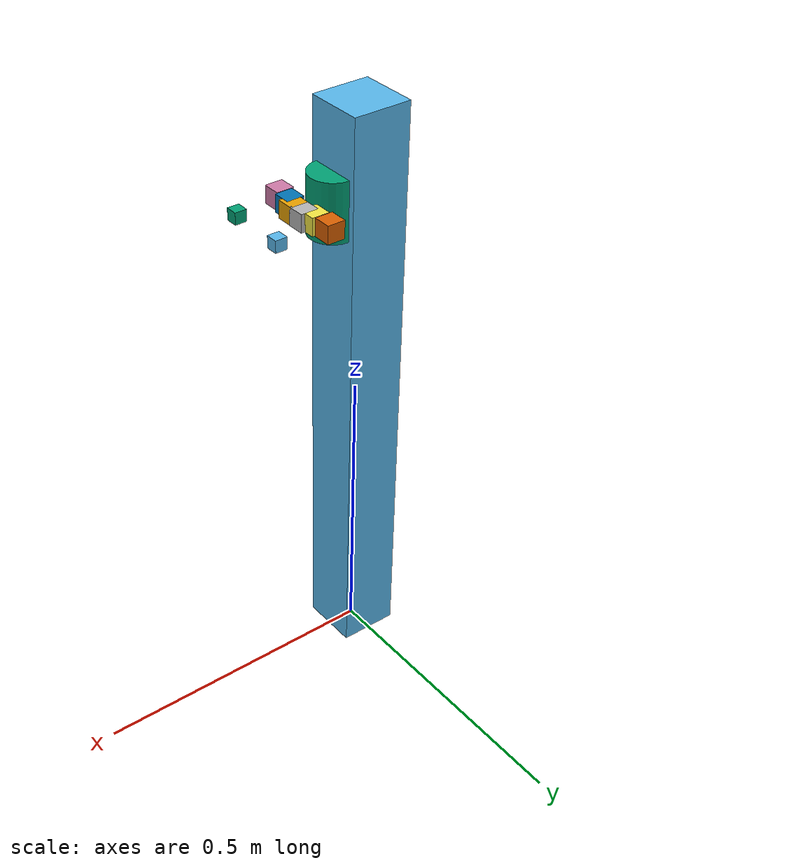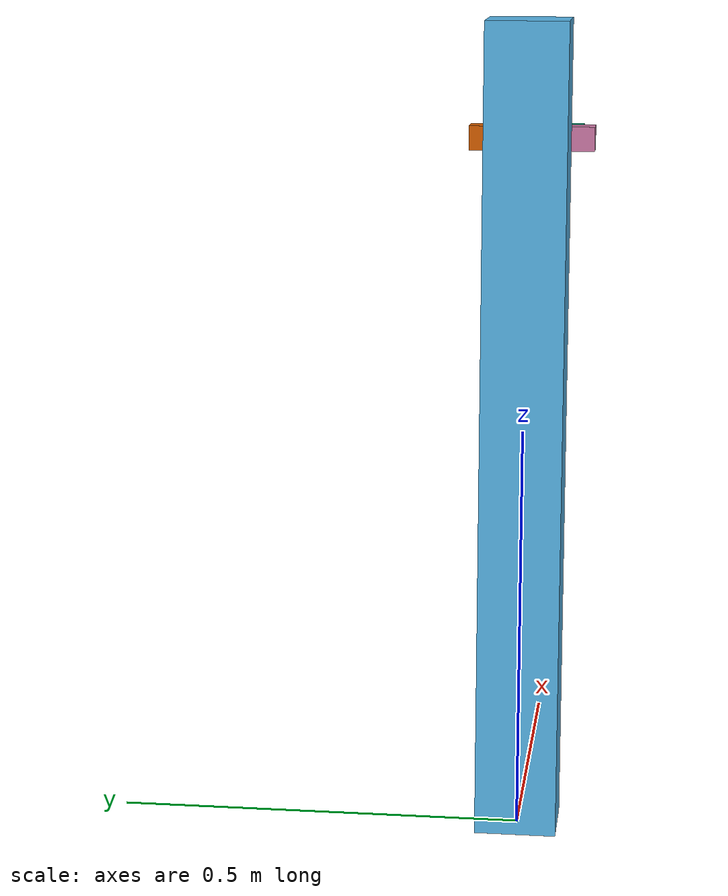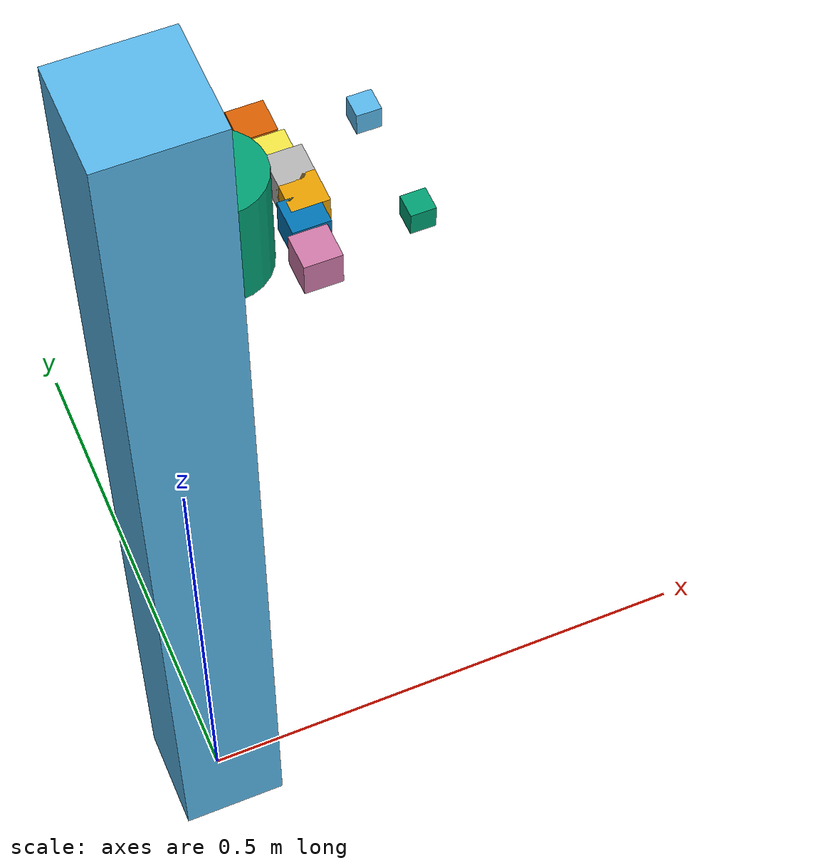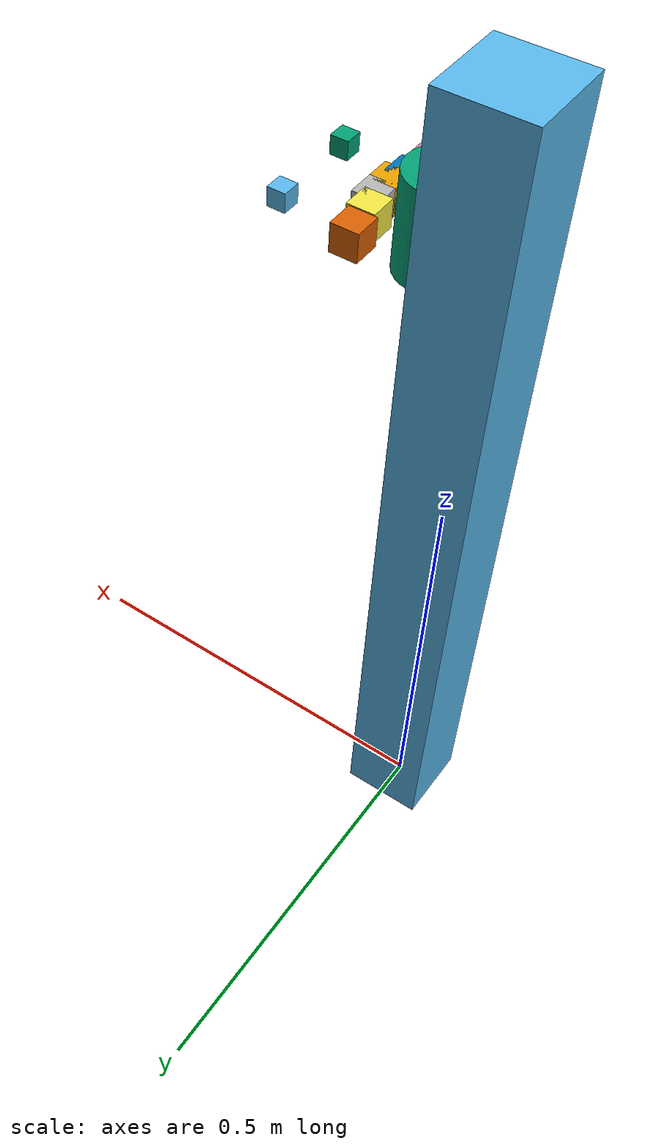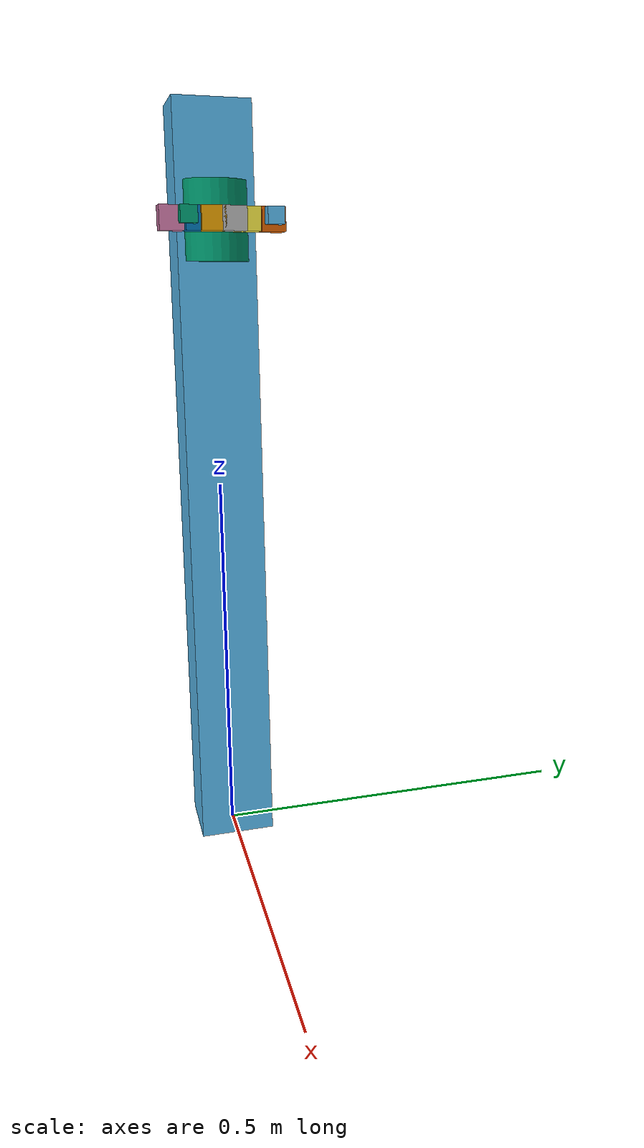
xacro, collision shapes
<?xml version="1.0" ?>

<robot name="robotiq_85_gripper"
  xmlns:xacro="http://www.ros.org/wiki/xacro">
  <xacro:include filename="$(find robotiq_description)/urdf/robotiq_85_gripper.urdf.xacro" />

  <gazebo>
    <plugin name="gz_ros2_control" filename="gz_ros2_control::GazeboSimROS2ControlPlugin">
      <robotNamespace>/</robotNamespace>
    </plugin>
  </gazebo>

  <link name="world"/>
  <joint name="world_fixed" type="fixed">
    <origin xyz="0 0 0" rpy="0 0 0"/>
    <parent link="world"/>
    <child link="gripper_root_link"/>
  </joint>

  <link name="gripper_root_link">
    <visual>
      <origin xyz="0 0 0.5" rpy="0 0 0"/>
      <geometry>
        <box size="0.1 0.1 1.0"/>
      </geometry>
    </visual>
    <collision>
      <origin xyz="0 0 0.5" rpy="0 0 0"/>
      <geometry>
        <box size="0.1 0.1 1.0"/>
      </geometry>
    </collision>
    <inertial>
      <mass value="1e2" />
      <origin xyz="0.0 0.0 0.0" />
      <inertia ixx = "0.000001" ixy = "0.000000" ixz = "0.000000"
           iyx = "0.000000" iyy = "0.000001" iyz = "0.000000"
           izx = "0.000000" izy = "0.000000" izz = "0.000001" />
    </inertial>
  </link>

  <xacro:robotiq_85_gripper prefix="" parent="gripper_root_link">
    <origin xyz="0.05 0 0.85" rpy="0 0 0"/>
  </xacro:robotiq_85_gripper>

</robot>

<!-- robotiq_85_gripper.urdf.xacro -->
<robot name="robotiq_85_gripper" xmlns:xacro="http://www.ros.org/wiki/xacro">

  <xacro:include filename="$(find robotiq_description)/urdf/robotiq_85_gripper.transmission.xacro" />

  <xacro:macro name="robotiq_85_gripper" params="prefix parent *origin">

    <joint name="${prefix}robotiq_85_base_joint" type="fixed">
      <parent link="${parent}"/>
      <child link="${prefix}robotiq_85_base_link"/>
      <xacro:insert_block name="origin"/>
    </joint>

    <link name="${prefix}robotiq_85_base_link">
      <visual>
        <geometry>
          <mesh filename="package://robotiq_description/meshes/visual/robotiq_85_base_link.dae"/>
        </geometry>
      </visual>
      <collision>
        <geometry>
          <cylinder radius="0.04" length="0.1"/>
        </geometry>
      </collision>
      <inertial>
        <mass value="0.636951" />
        <origin xyz="0.0 0.0 0.0" />
        <inertia ixx = "0.000380" ixy = "0.000000" ixz = "0.000000"
             iyx = "0.000000" iyy = "0.001110" iyz = "0.000000"
             izx = "0.000000" izy = "0.000000" izz = "0.001171" />
      </inertial>
    </link>

    <joint name="${prefix}robotiq_85_left_knuckle_joint" type="revolute">
      <parent link="${prefix}robotiq_85_base_link"/>
      <child link="${prefix}robotiq_85_left_knuckle_link"/>
      <axis xyz="0 0 1"/>
      <origin rpy="${pi} 0.0 0.0" xyz="0.05490451627 0.03060114443 0.0"/>
      <limit lower="0.0" upper="0.80285" velocity="0.5" effort="1000"/>
    </joint>

    <joint name="${prefix}robotiq_85_right_knuckle_joint" type="continuous">
      <parent link="${prefix}robotiq_85_base_link"/>
      <child link="${prefix}robotiq_85_right_knuckle_link"/>
      <axis xyz="0 0 1"/>
      <origin rpy="0.0 0.0 0.0" xyz="0.05490451627 -0.03060114443 0.0"/>
      <limit lower="-3.14" upper="3.14" velocity="100.0" effort="1000"/>
      <mimic joint="${prefix}robotiq_85_left_knuckle_joint" multiplier="1.0"/>
    </joint>

    <link name="${prefix}robotiq_85_left_knuckle_link">
      <visual>
        <geometry>
          <mesh filename="package://robotiq_description/meshes/visual/robotiq_85_knuckle_link.dae"/>
        </geometry>
      </visual>
      <collision>
        <geometry>
          <box size="0.03 0.03 0.03"/>
        </geometry>
      </collision>
      <inertial>
        <mass value="0.018491" />
        <origin xyz="0.0 0.0 0.0" />
        <inertia ixx = "0.000009" ixy = "-0.000001" ixz = "0.000000"
             iyx = "-0.000001" iyy = "0.000001" iyz = "0.000000"
             izx = "0.000000" izy = "0.000000" izz = "0.000010" />
      </inertial>
    </link>

    <link name="${prefix}robotiq_85_right_knuckle_link">
      <visual>
        <geometry>
          <mesh filename="package://robotiq_description/meshes/visual/robotiq_85_knuckle_link.dae"/>
        </geometry>
      </visual>
      <collision>
        <geometry>
          <box size="0.03 0.03 0.03"/>
        </geometry>
      </collision>
      <inertial>
        <mass value="0.018491" />
        <origin xyz="0.0 0.0 0.0" />
        <inertia ixx = "0.000009" ixy = "-0.000001" ixz = "0.000000"
             iyx = "-0.000001" iyy = "0.000001" iyz = "0.000000"
             izx = "0.000000" izy = "0.000000" izz = "0.000010" />
      </inertial>
    </link>

    <joint name="${prefix}robotiq_85_left_finger_joint" type="fixed">
      <parent link="${prefix}robotiq_85_left_knuckle_link"/>
      <child link="${prefix}robotiq_85_left_finger_link"/>
      <origin xyz="-0.00408552455 -0.03148604435 0.0" rpy="0 0 0" />
    </joint>

    <joint name="${prefix}robotiq_85_right_finger_joint" type="fixed">
      <parent link="${prefix}robotiq_85_right_knuckle_link"/>
      <child link="${prefix}robotiq_85_right_finger_link"/>
      <origin xyz="-0.00408552455 -0.03148604435 0.0" rpy="0 0 0" />
    </joint>

    <link name="${prefix}robotiq_85_left_finger_link">
      <visual>
        <geometry>
          <mesh filename="package://robotiq_description/meshes/visual/robotiq_85_finger_link.dae"/>
        </geometry>
      </visual>
      <collision>
        <geometry>
          <box size="0.03 0.03 0.03"/>
        </geometry>
      </collision>
      <inertial>
        <mass value="0.027309" />
        <origin xyz="0.0 0.0 0.0" />
        <inertia ixx = "0.000003" ixy = "-0.000002" ixz = "0.000000"
             iyx = "-0.000002" iyy = "0.000021" iyz = "0.000000"
             izx = "0.000000" izy = "0.000000" izz = "0.000020" />
      </inertial>
    </link>

    <link name="${prefix}robotiq_85_right_finger_link">
      <visual>
        <geometry>
          <mesh filename="package://robotiq_description/meshes/visual/robotiq_85_finger_link.dae"/>
        </geometry>
      </visual>
      <collision>
        <geometry>
          <box size="0.03 0.03 0.03"/>
        </geometry>
      </collision>
      <inertial>
        <mass value="0.027309" />
        <origin xyz="0.0 0.0 0.0" />
        <inertia ixx = "0.000003" ixy = "-0.000002" ixz = "0.000000"
             iyx = "-0.000002" iyy = "0.000021" iyz = "0.000000"
             izx = "0.000000" izy = "0.000000" izz = "0.000020" />
      </inertial>
    </link>

    <joint name="${prefix}robotiq_85_left_inner_knuckle_joint" type="continuous">
      <parent link="${prefix}robotiq_85_base_link"/>
      <child link="${prefix}robotiq_85_left_inner_knuckle_link"/>
      <axis xyz="0 0 1"/>
      <origin xyz="0.06142 0.0127 0" rpy="${pi} 0.0 0.0" />
      <limit lower="-3.14" upper="3.14" velocity="100.0" effort="0.1"/>
      <mimic joint="${prefix}robotiq_85_left_knuckle_joint" offset="0"/>
    </joint>

    <joint name="${prefix}robotiq_85_right_inner_knuckle_joint" type="continuous">
      <parent link="${prefix}robotiq_85_base_link"/>
      <child link="${prefix}robotiq_85_right_inner_knuckle_link"/>
      <axis xyz="0 0 1"/>
      <origin xyz="0.06142 -0.0127 0" rpy="0 0 0"/>
      <limit lower="-3.14" upper="3.14" velocity="100.0" effort="0.1"/>
      <mimic joint="${prefix}robotiq_85_left_knuckle_joint" offset="0"/>
    </joint>

    <link name="${prefix}robotiq_85_left_inner_knuckle_link">
      <visual>
        <geometry>
          <mesh filename="package://robotiq_description/meshes/visual/robotiq_85_inner_knuckle_link.dae"/>
        </geometry>
      </visual>
      <collision>
        <geometry>
          <box size="0.03 0.03 0.03"/>
        </geometry>
      </collision>
      <inertial>
        <mass value="0.029951" />
        <origin xyz="0.0 0.0 0.0" />
        <inertia ixx = "0.000039" ixy = "0.000000" ixz = "0.000000"
             iyx = "0.000000" iyy = "0.000005" iyz = "0.000000"
             izx = "0.000000" izy = "0.000000" izz = "0.000035" />
      </inertial>
    </link>
    <link name="${prefix}robotiq_85_right_inner_knuckle_link">
      <visual>
        <geometry>
          <mesh filename="package://robotiq_description/meshes/visual/robotiq_85_inner_knuckle_link.dae"/>
        </geometry>
      </visual>
      <collision>
        <geometry>
          <box size="0.03 0.03 0.03"/>
        </geometry>
      </collision>
      <inertial>
        <mass value="0.029951" />
        <origin xyz="0.0 0.0 0.0" />
        <inertia ixx = "0.000039" ixy = "0.000000" ixz = "0.000000"
             iyx = "0.000000" iyy = "0.000005" iyz = "0.000000"
             izx = "0.000000" izy = "0.000000" izz = "0.000035" />
      </inertial>
    </link>

    <joint name="${prefix}robotiq_85_left_finger_tip_joint" type="continuous">
      <parent link="${prefix}robotiq_85_left_inner_knuckle_link"/>
      <child link="${prefix}robotiq_85_left_finger_tip_link"/>
      <axis xyz="0 0 1"/>
      <origin xyz="0.04303959807 -0.03759940821 0.0" rpy="0.0 0.0 0.0"/>
      <limit lower="-3.14" upper="3.14" velocity="100.0" effort="0.1"/>
      <mimic joint="${prefix}robotiq_85_left_knuckle_joint" multiplier="-1"/>
    </joint>

    <joint name="${prefix}robotiq_85_right_finger_tip_joint" type="continuous">
      <parent link="${prefix}robotiq_85_right_inner_knuckle_link"/>
      <child link="${prefix}robotiq_85_right_finger_tip_link"/>
      <axis xyz="0 0 1"/>
      <origin rpy="0.0 0.0 0.0" xyz="0.04303959807 -0.03759940821  0.0"/>
      <limit lower="-3.14" upper="3.14" velocity="100.0" effort="0.1"/>
      <mimic joint="${prefix}robotiq_85_left_knuckle_joint" multiplier="-1"/>
    </joint>

    <link name="${prefix}robotiq_85_left_finger_tip_link">
      <visual>
        <geometry>
          <mesh filename="package://robotiq_description/meshes/visual/robotiq_85_finger_tip_link.dae"/>
        </geometry>
      </visual>
      <collision>
        <origin xyz="0.03 0 0" rpy="0 0 0"/>
        <geometry>
          <box size="0.02 0.02 0.02"/>
        </geometry>
      </collision>
      <inertial>
        <mass value="0.019555" />
        <origin xyz="0.0 0.0 0.0" />
        <inertia ixx = "0.000002" ixy = "0.000000" ixz = "0.000000"
             iyx = "0.000000" iyy = "0.000005" iyz = "0.000000"
             izx = "0.000000" izy = "0.000000" izz = "0.000006" />
      </inertial>
    </link>

    <gazebo reference="${prefix}robotiq_85_left_finger_tip_link">
      <sensor name="left_finger_contact" type="contact">
        <always_on>true</always_on>
        <update_rate>100</update_rate>
        <contact>
          <collision>
            robotiq_85_left_finger_tip_link_collision
          </collision>
        </contact>
      </sensor>
    </gazebo>

    <link name="${prefix}robotiq_85_right_finger_tip_link">
      <visual>
        <geometry>
          <mesh filename="package://robotiq_description/meshes/visual/robotiq_85_finger_tip_link.dae"/>
        </geometry>
      </visual>
      <collision>
        <origin xyz="0.03 0 0" rpy="0 0 0"/>
        <geometry>
          <box size="0.02 0.02 0.02"/>
        </geometry>
      </collision>
      <inertial>
        <mass value="0.019555" />
        <origin xyz="0.0 0.0 0.0" />
        <inertia ixx = "0.000002" ixy = "0.000000" ixz = "0.000000"
             iyx = "0.000000" iyy = "0.000005" iyz = "0.000000"
             izx = "0.000000" izy = "0.000000" izz = "0.000006" />
      </inertial>
    </link>

    <gazebo reference="${prefix}robotiq_85_right_finger_tip_link">
      <sensor name="right_finger_contact" type="contact">
        <always_on>true</always_on>
        <update_rate>100</update_rate>
        <contact>
          <collision>
            robotiq_85_right_finger_tip_link_collision
          </collision>
        </contact>
      </sensor>
    </gazebo>

    <xacro:robotiq_85_gripper_transmission prefix="${prefix}" />

  </xacro:macro>
</robot>
